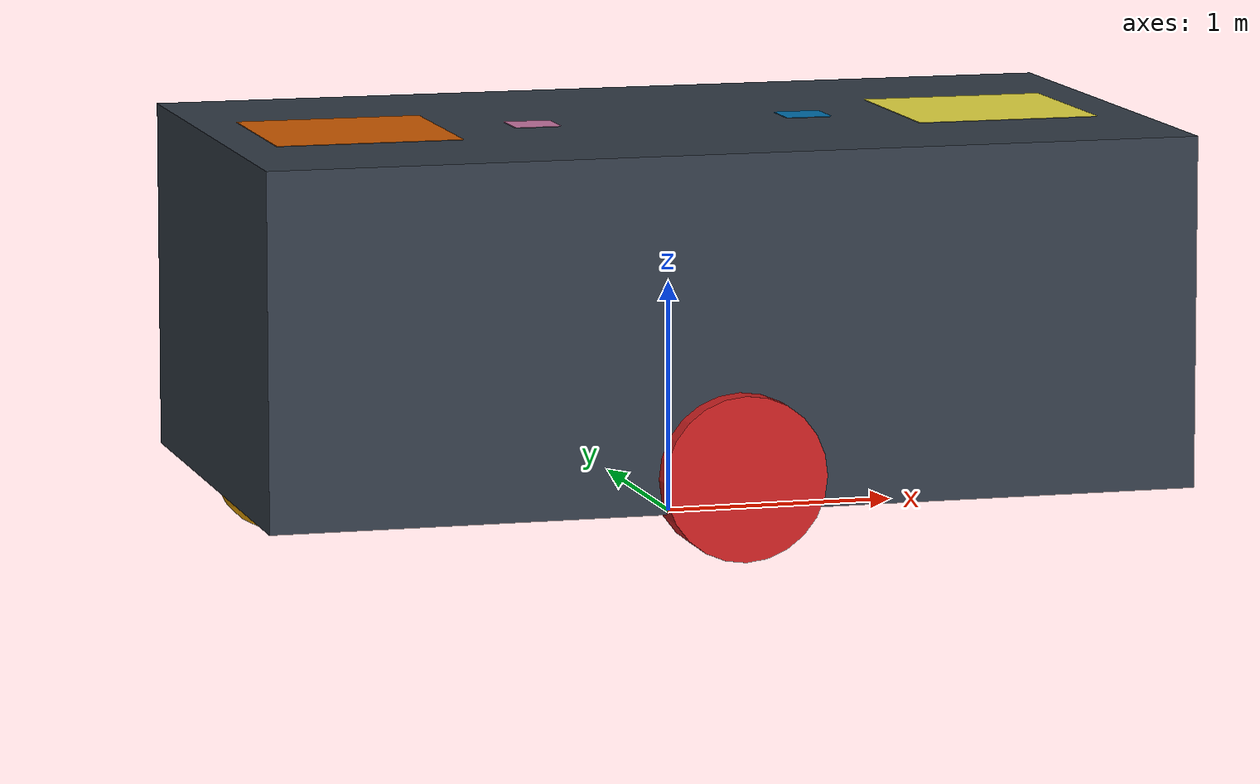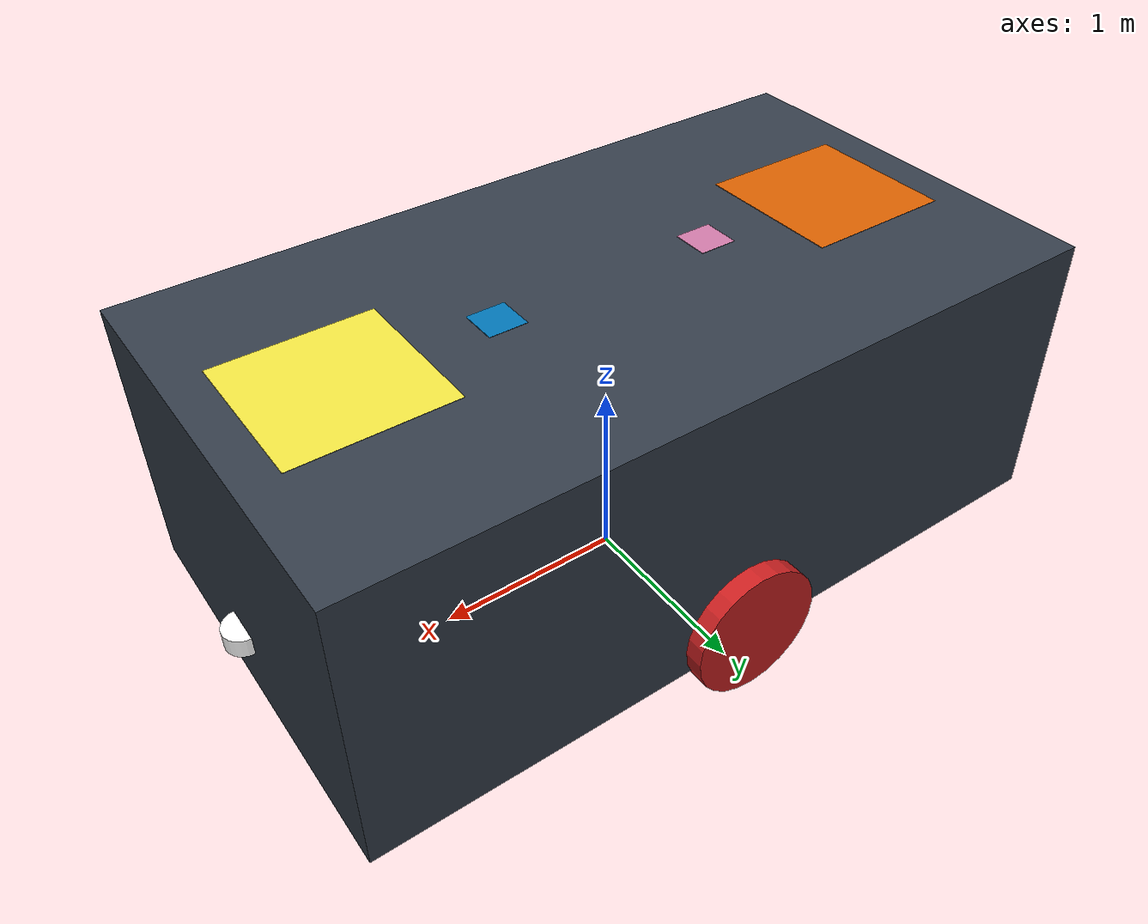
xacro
<?xml version="1.0" ?>

<robot name="twr" xmlns:xacro="https://www.ros.org/wiki/xacro" >

  <xacro:property name="PI" value="3.1415926535897931"/>
  <!-- length in meters and weight in kgs -->
  <xacro:property name="chassisHeight" value="1.5"/>
  <xacro:property name="chassisLength" value="4"/>
  <xacro:property name="chassisWidth" value="2.225"/>
  <xacro:property name="chassisMass" value="500"/>

  <xacro:property name="casterRadius" value="0.3"/>
  <xacro:property name="casterMass" value="10"/>

  <xacro:property name="wheelWidth" value="0.2"/>
  <xacro:property name="wheelRadius" value="0.35"/>
  <xacro:property name="wheelPos" value="1"/>
  <xacro:property name="wheelMass" value="20"/>

  <xacro:property name="groundClearance" value="0.2"/>
  <xacro:property name="chasterZOffest" value="${-chassisHeight/2 + (-groundClearance + casterRadius) + 0.0012}"/>
  <xacro:property name="wheelZOffest" value="${-chassisHeight/2 + (-groundClearance + wheelRadius) }"/>

  <xacro:property name="cameraSize" value="0.05"/>
  <xacro:property name="cameraMass" value="0.1"/>

  <xacro:include filename="$(find twr_description)/urdf/twr.gazebo" />
  <xacro:include filename="$(find twr_description)/urdf/materials.xacro" />
  <xacro:include filename="$(find twr_description)/urdf/macros.xacro" />
  <xacro:include filename="$(find twr_description)/urdf/inertia_macros.xacro" />

  <!-- just a dummy link as KDL does not support a root link with an inertia.
       As a workaround, we have to add an extra dummy link to our URDF -->
  <link name="link_dummy"/>
  <joint name="joint_chassis" type="fixed">
    <child link="link_chassis" />
    <parent link="link_dummy"/>
    <origin rpy="0 0 0" xyz="0 0 ${groundClearance+chassisHeight/2}"/>
  </joint>

  <link name="link_chassis">
    <!-- pose and inertial -->

    <collision name="collision_chassis">
      <origin rpy="0 0 0" xyz="0 0 0"/>
      <geometry>
        <box size="${chassisLength} ${chassisWidth} ${chassisHeight}"/>
      </geometry>
    </collision>

    <visual>
      <origin rpy="0 0 0" xyz="0 0 0"/>
      <geometry>
        <box size="${chassisLength} ${chassisWidth} ${chassisHeight}"/>
      </geometry>
      <material name="blue"/>
    </visual>

    <inertial>
      <mass value="${chassisMass}"/>
      <origin rpy="0 0 0" xyz="0 0 ${-chassisHeight/4}"/>
      <xacro:box_inertia m="${chassisMass}" x="${chassisLength}" y="${chassisWidth}" z="${chassisHeight}"/>
    </inertial>
  </link>

  <joint name="joint_sensor_laser" type="fixed">
    <origin xyz="${chassisLength/2} 0 ${-chassisHeight/4}" rpy="0 0 0"/>
    <parent link="link_chassis"/>
    <child link="link_sensor_laser"/>
  </joint>

  <link name="link_sensor_laser">
    <visual>
      <origin xyz="0 0 0" rpy="0 0 0" />
      <geometry>
        <cylinder radius="0.1" length="0.1"/>
      </geometry>
      <material name="white" />
    </visual>

    <collision>
      <origin xyz="0 0 0" rpy="0 0 0"/>
      <geometry>
        <cylinder radius="0.05" length="0.1"/>
      </geometry>
    </collision>
  </link>

  <xacro:aruco idA="129" idB="72" tX="1" dimA="0.2" dimB="0.8"/>
  <xacro:aruco idA="35" idB="48" tX="-1" dimA="0.2" dimB="0.8"/>

  <xacro:chaster name="front" tX="1"/>
  <xacro:chaster name="back" tX="-1"/>

  <xacro:wheel lr="left" tY="1" offsetX="0"/>
  <xacro:wheel lr="right" tY="-1" offsetX = "0"/>

</robot>

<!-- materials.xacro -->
<robot> xmlns:xacro="http://www.ros.org/wiki/xacro"
    <material name="black">
        <color rgba="0.0 0.0 0.0 1.0"/>
    </material>
    <material name="blue">
        <color rgba="0.203125 0.23828125 0.28515625 1.0"/>
    </material>
    <material name="green">
        <color rgba="0.0 0.8 0.0 1.0"/>
    </material>
    <material name="grey">
        <color rgba="0.2 0.2 0.2 1.0"/>
    </material>
    <material name="orange">
        <color rgba="1.0 0.423529411765 0.0392156862745 1.0"/>
    </material>
    <material name="brown">
        <color rgba="0.870588235294 0.811764705882 0.764705882353 1.0"/>
    </material>
    <material name="red">
        <color rgba="0.80078125 0.12890625 0.1328125 1.0"/>
    </material>
    <material name="white">
        <color rgba="1.0 1.0 1.0 1.0"/>
    </material>
</robot>

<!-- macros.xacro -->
<robot xmlns:xacro="http://www.ros.org/wiki/xacro">
    <xacro:macro name="wheel" params="lr tY offsetX">
        <link name="link_${lr}_wheel">
            <collision>
                <origin xyz="0 0 0" rpy="0 ${PI/2} ${PI/2}" />
                <geometry>
                <cylinder length="${wheelWidth}" radius="${wheelRadius}"/>
                </geometry>
            </collision>

            <visual>
                <origin xyz="0 0 0" rpy="0 ${PI/2} ${PI/2}" />
                <geometry>
                <cylinder length="${wheelWidth}" radius="${wheelRadius}"/>
                </geometry>
                <material name="red"/>
            </visual>

            <inertial>
                <origin xyz="0 0 0" rpy="0 ${PI/2} ${PI/2}" />
                <mass value="${wheelMass}"/>
                <xacro:cylinder_inertia m="${wheelMass}" r="${wheelRadius}" h="${wheelWidth}"/>
            </inertial>
        </link>

        <gazebo reference="link_${lr}_wheel">
            <mu1 value="1"/>
            <mu2 value="1"/>
            <kp  value="1000000000.0" />
            <kd  value="1.0" />
            <fdir1 value="1 0 0"/>
        </gazebo>

        <joint name="joint_${lr}_wheel" type="continuous">
            <parent link="link_chassis"/>
            <child link="link_${lr}_wheel"/>

            <origin xyz="${offsetX} ${tY*chassisWidth/2} ${wheelZOffest}" rpy="0 0 0" />
            <axis xyz="0 1 0" rpy="0 0 0" />
            <limit effort="1000000" velocity="100000"/>
            <joint_properties damping="5.0" friction="5.0" />
        </joint>

    </xacro:macro>

    <xacro:macro name="chaster" params="name tX">
        <joint name="joint_chaster_${name}" type="fixed">
            <child link="link_chaster_${name}" />
            <parent link="link_chassis"/>
            <origin rpy=" 0 0 0" xyz="${tX*(chassisLength/2-casterRadius)} 0 ${chasterZOffest}"/>

        </joint>

        <link name="link_chaster_${name}">
            <collision name="caster_${name}_collision">
            <origin rpy=" 0 0 0" xyz="0 0 0"/>
            <geometry>
                <sphere radius="${casterRadius}"/>
            </geometry>
            <surface>
                <friction>
                <ode>
                    <mu>0</mu>
                    <mu2>0</mu2>
                    <slip1>1.0</slip1>
                    <slip2>1.0</slip2>
                </ode>
                </friction>
            </surface>
            </collision>

            <visual name="caster_${name}_visual">
            <origin rpy=" 0 0 0" xyz="0 0 0"/>
            <geometry>
                <sphere radius="${casterRadius}"/>
            </geometry>
            </visual>

            <inertial>
            <origin rpy=" 0 0 0" xyz="0 0 0"/>
            <mass value="${casterMass}"/>
            <xacro:sphere_inertia m="${casterMass}" r="${casterRadius}"/>
            </inertial>
        </link>
    </xacro:macro>

    <xacro:macro name="aruco" params="idA idB tX dimA dimB">

        <!-- larger aruco -->
        <joint name="joint_aruco_${idB}" type="fixed">
            <parent link="link_chassis"/>
            <child link="link_aruco_${idB}"/>
            <origin rpy="0 0 0" xyz="${tX*(chassisLength/2 - 0.6)} 0 ${chassisHeight/2}"/>
        </joint>

        <link name="link_aruco_${idB}">
            <visual>
                <origin rpy="0 0 0" xyz="0 0 0"/>
                <geometry>
                <box size="${dimB} ${dimB} 0.005"/>
                </geometry>
            </visual>
        </link>
        <gazebo reference="link_aruco_${idB}">
            <material>Gazebo/Aruco${idB}</material>
        </gazebo>

       <!-- smaller aruco  -->
        <joint name="joint_aruco_${idA}" type="fixed">
            <parent link="link_chassis"/>
            <child link="link_aruco_${idA}"/>
            <origin rpy="0 0 0" xyz="${tX*(chassisLength/2 - 0.6 - dimB)} 0 ${chassisHeight/2}"/>
        </joint>

        <link name="link_aruco_${idA}">
            <visual>
                <origin rpy="0 0 0" xyz="0 0 0"/>
                <geometry>
                <box size="${dimA} ${dimA} 0.005"/>
                </geometry>
            </visual>
        </link>
        <gazebo reference="link_aruco_${idA}">
            <material>Gazebo/Aruco${idA}</material>
        </gazebo>

    </xacro:macro>
</robot>

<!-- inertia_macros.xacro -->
<robot xmlns:xacro="http://www.ros.org/wiki/xacro">
    <xacro:macro name="cylinder_inertia" params="m r h">
        <inertia  ixx="${m*(3*r*r+h*h)/12}" ixy = "0" ixz = "0"
            iyy="${m*(3*r*r+h*h)/12}" iyz = "0"
            izz="${m*r*r/2}"
        />
    </xacro:macro>

    <xacro:macro name="box_inertia" params="m x y z">
        <inertia  ixx="${m*(y*y+z*z)/12}" ixy = "0" ixz = "0"
            iyy="${m*(x*x+z*z)/12}" iyz = "0"
            izz="${m*(x*x+z*z)/12}"
        />
    </xacro:macro>

    <xacro:macro name="sphere_inertia" params="m r">
        <inertia  ixx="${2*m*r*r/5}" ixy = "0" ixz = "0"
            iyy="${2*m*r*r/5}" iyz = "0"
            izz="${2*m*r*r/5}"
        />
    </xacro:macro>
</robot>
